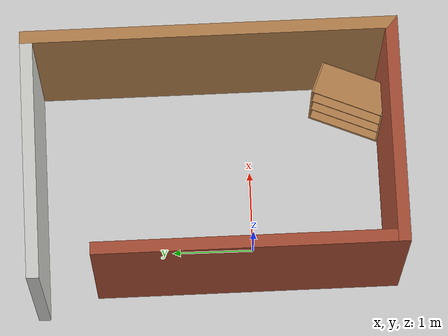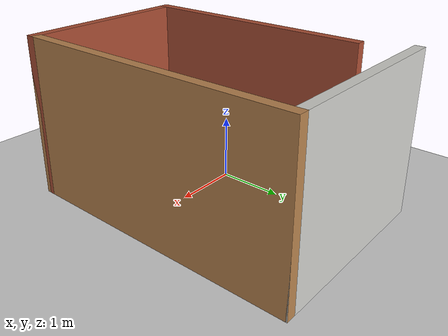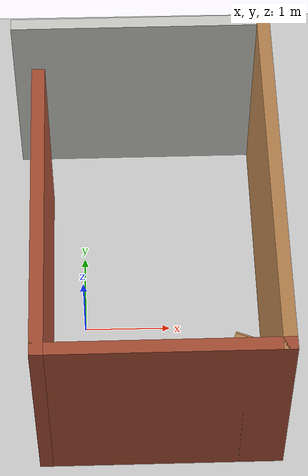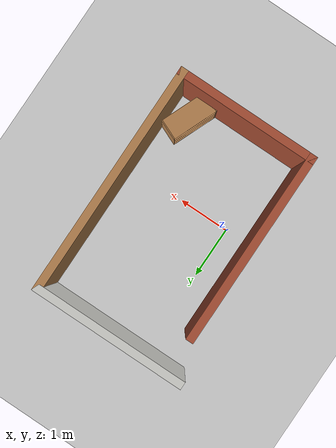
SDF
<sdf version="1.6">
 <world name="default">
  <light name="sun" type="directional">
   <pose>0 0 10 0 -0 0</pose>
   <diffuse>0.8 0.8 0.8 1</diffuse>
   <specular>0.1 0.1 0.1 1</specular>
   <attenuation>
    <range>1000</range>
    <constant>0.9</constant>
    <linear>0.01</linear>
    <quadratic>0.001</quadratic>
   </attenuation>
   <direction>-0.5 0.5 -1</direction>
  </light>
  <model name="ground_plane">
   <static>1</static>
   <link name="link">
    <collision name="collision">
     <geometry><plane><normal>0 0 1</normal><size>100 100</size></plane></geometry>
     <surface><friction><ode><mu>100</mu><mu2>50</mu2></ode></friction></surface>
    </collision>
    <visual name="visual">
     <cast_shadows>0</cast_shadows>
     <geometry><plane><normal>0 0 1</normal><size>100 100</size></plane></geometry>
     <material>
      <script><uri>file://media/materials/scripts/gazebo.material</uri><name>Gazebo/Grey</name></script>
     </material>
    </visual>
   </link>
  </model>
  <gravity>0 0 -9.8</gravity>
  <magnetic_field>6e-06 2.3e-05 -4.2e-05</magnetic_field>
  <atmosphere type="adiabatic"/>
  <physics name="default_physics" default="0" type="ode">
   <max_step_size>0.001</max_step_size>
   <real_time_factor>1</real_time_factor>
   <real_time_update_rate>1000</real_time_update_rate>
  </physics>
  <scene><ambient>0.4 0.4 0.4 1</ambient><background>0.7 0.7 0.7 1</background><shadows>1</shadows></scene>
  <spherical_coordinates>
   <surface_model>EARTH_WGS84</surface_model>
   <latitude_deg>0</latitude_deg>
   <longitude_deg>0</longitude_deg>
   <elevation>0</elevation>
   <heading_deg>0</heading_deg>
  </spherical_coordinates>
  <model name="livingroom_0">
   <link name="Wall_0">
    <pose>0 1.425 0 0 -0 0</pose>
    <visual name="Wall_0_Visual">
     <pose>0 0 1.25 0 -0 0</pose>
     <geometry><box><size>4.5 0.15 2.5</size></box></geometry>
     <material>
      <script><uri>file://media/materials/scripts/gazebo.material</uri><name>Gazebo/Wood</name></script>
      <ambient>1 1 1 1</ambient>
      <diffuse>1 1 1 1</diffuse>
      <specular>0.2 0.2 0.2 1</specular>
      <emissive>0 0 0 1</emissive>
     </material>
    </visual>
    <collision name="Wall_0_Collision">
     <pose>0 0 1.25 0 -0 0</pose>
     <geometry><box><size>4.5 0.15 2.5</size></box></geometry>
     <surface>
      <friction>
       <ode><mu>1</mu><mu2>1</mu2><fdir1>0 0 0</fdir1><slip1>0</slip1><slip2>0</slip2></ode>
       <torsional>
        <coefficient>1</coefficient>
        <patch_radius>0</patch_radius>
        <surface_radius>0</surface_radius>
        <use_patch_radius>1</use_patch_radius>
        <ode><slip>0</slip></ode>
       </torsional>
      </friction>
      <bounce><restitution_coefficient>0</restitution_coefficient><threshold>1e+06</threshold></bounce>
      <contact>
       <collide_without_contact>0</collide_without_contact>
       <collide_without_contact_bitmask>1</collide_without_contact_bitmask>
       <collide_bitmask>1</collide_bitmask>
       <ode>
        <soft_cfm>0</soft_cfm>
        <soft_erp>0.2</soft_erp>
        <kp>1e+13</kp>
        <kd>1</kd>
        <max_vel>0.01</max_vel>
        <min_depth>0</min_depth>
       </ode>
       <bullet>
        <split_impulse>1</split_impulse>
        <split_impulse_penetration_threshold>-0.01</split_impulse_penetration_threshold>
        <soft_cfm>0</soft_cfm>
        <soft_erp>0.2</soft_erp>
        <kp>1e+13</kp>
        <kd>1</kd>
       </bullet>
      </contact>
     </surface>
    </collision>
   </link>
   <link name="Wall_1">
    <pose>2.175 0.125 0 0 0 -1.5708</pose>
    <visual name="Wall_1_Visual">
     <pose>0 0 1.25 0 -0 0</pose>
     <geometry><box><size>2.75 0.15 2.5</size></box></geometry>
     <material>
      <script><uri>file://media/materials/scripts/gazebo.material</uri><name>Gazebo/Bricks</name></script>
      <ambient>1 1 1 1</ambient>
      <diffuse>1 1 1 1</diffuse>
      <specular>0.2 0.2 0.2 1</specular>
      <emissive>0 0 0 1</emissive>
     </material>
    </visual>
    <collision name="Wall_1_Collision">
     <pose>0 0 1.25 0 -0 0</pose>
     <geometry><box><size>2.75 0.15 2.5</size></box></geometry>
     <surface>
      <friction>
       <ode><mu>1</mu><mu2>1</mu2><fdir1>0 0 0</fdir1><slip1>0</slip1><slip2>0</slip2></ode>
       <torsional>
        <coefficient>1</coefficient>
        <patch_radius>0</patch_radius>
        <surface_radius>0</surface_radius>
        <use_patch_radius>1</use_patch_radius>
        <ode><slip>0</slip></ode>
       </torsional>
      </friction>
      <bounce><restitution_coefficient>0</restitution_coefficient><threshold>1e+06</threshold></bounce>
      <contact>
       <collide_without_contact>0</collide_without_contact>
       <collide_without_contact_bitmask>1</collide_without_contact_bitmask>
       <collide_bitmask>1</collide_bitmask>
       <ode>
        <soft_cfm>0</soft_cfm>
        <soft_erp>0.2</soft_erp>
        <kp>1e+13</kp>
        <kd>1</kd>
        <max_vel>0.01</max_vel>
        <min_depth>0</min_depth>
       </ode>
       <bullet>
        <split_impulse>1</split_impulse>
        <split_impulse_penetration_threshold>-0.01</split_impulse_penetration_threshold>
        <soft_cfm>0</soft_cfm>
        <soft_erp>0.2</soft_erp>
        <kp>1e+13</kp>
        <kd>1</kd>
       </bullet>
      </contact>
     </surface>
    </collision>
   </link>
   <link name="Wall_2">
    <pose>0.375 -1.175 0 0 -0 3.14159</pose>
    <visual name="Wall_2_Visual">
     <pose>0 0 1.25 0 -0 0</pose>
     <geometry><box><size>3.75 0.15 2.5</size></box></geometry>
     <material>
      <script><uri>file://media/materials/scripts/gazebo.material</uri><name>Gazebo/Bricks</name></script>
      <ambient>1 1 1 1</ambient>
      <diffuse>1 1 1 1</diffuse>
      <specular>0.2 0.2 0.2 1</specular>
      <emissive>0 0 0 1</emissive>
     </material>
    </visual>
    <collision name="Wall_2_Collision">
     <pose>0 0 1.25 0 -0 0</pose>
     <geometry><box><size>3.75 0.15 2.5</size></box></geometry>
     <surface>
      <friction>
       <ode><mu>1</mu><mu2>1</mu2><fdir1>0 0 0</fdir1><slip1>0</slip1><slip2>0</slip2></ode>
       <torsional>
        <coefficient>1</coefficient>
        <patch_radius>0</patch_radius>
        <surface_radius>0</surface_radius>
        <use_patch_radius>1</use_patch_radius>
        <ode><slip>0</slip></ode>
       </torsional>
      </friction>
      <bounce><restitution_coefficient>0</restitution_coefficient><threshold>1e+06</threshold></bounce>
      <contact>
       <collide_without_contact>0</collide_without_contact>
       <collide_without_contact_bitmask>1</collide_without_contact_bitmask>
       <collide_bitmask>1</collide_bitmask>
       <ode>
        <soft_cfm>0</soft_cfm>
        <soft_erp>0.2</soft_erp>
        <kp>1e+13</kp>
        <kd>1</kd>
        <max_vel>0.01</max_vel>
        <min_depth>0</min_depth>
       </ode>
       <bullet>
        <split_impulse>1</split_impulse>
        <split_impulse_penetration_threshold>-0.01</split_impulse_penetration_threshold>
        <soft_cfm>0</soft_cfm>
        <soft_erp>0.2</soft_erp>
        <kp>1e+13</kp>
        <kd>1</kd>
       </bullet>
      </contact>
     </surface>
    </collision>
   </link>
   <link name="Wall_6">
    <pose>-2.175 0 0 0 0 -1.5708</pose>
    <visual name="Wall_6_Visual">
     <pose>0 0 1.25 0 -0 0</pose>
     <geometry><box><size>3 0.15 2.5</size></box></geometry>
     <material>
      <script><uri>file://media/materials/scripts/gazebo.material</uri><name>Gazebo/CeilingTiled</name></script>
      <ambient>1 1 1 1</ambient>
      <diffuse>1 1 1 1</diffuse>
      <specular>0 0 0 1</specular>
      <emissive>0 0 0 1</emissive>
     </material>
    </visual>
    <collision name="Wall_6_Collision">
     <pose>0 0 1.25 0 -0 0</pose>
     <geometry><box><size>3 0.15 2.5</size></box></geometry>
     <surface>
      <friction>
       <ode><mu>1</mu><mu2>1</mu2><fdir1>0 0 0</fdir1><slip1>0</slip1><slip2>0</slip2></ode>
       <torsional>
        <coefficient>1</coefficient>
        <patch_radius>0</patch_radius>
        <surface_radius>0</surface_radius>
        <use_patch_radius>1</use_patch_radius>
        <ode><slip>0</slip></ode>
       </torsional>
      </friction>
      <bounce><restitution_coefficient>0</restitution_coefficient><threshold>1e+06</threshold></bounce>
      <contact>
       <collide_without_contact>0</collide_without_contact>
       <collide_without_contact_bitmask>1</collide_without_contact_bitmask>
       <collide_bitmask>1</collide_bitmask>
       <ode>
        <soft_cfm>0</soft_cfm>
        <soft_erp>0.2</soft_erp>
        <kp>1e+13</kp>
        <kd>1</kd>
        <max_vel>0.01</max_vel>
        <min_depth>0</min_depth>
       </ode>
       <bullet>
        <split_impulse>1</split_impulse>
        <split_impulse_penetration_threshold>-0.01</split_impulse_penetration_threshold>
        <soft_cfm>0</soft_cfm>
        <soft_erp>0.2</soft_erp>
        <kp>1e+13</kp>
        <kd>1</kd>
       </bullet>
      </contact>
     </surface>
    </collision>
   </link>
   <model name="bookshelf">
    <static>1</static>
    <link name="link">
     <inertial><mass>1</mass></inertial>
     <collision name="back">
      <pose>0 0.005 0.6 0 -0 0</pose>
      <geometry><box><size>0.9 0.01 1.2</size></box></geometry>
     </collision>
     <visual name="visual1">
      <pose>0 0.005 0.6 0 -0 0</pose>
      <geometry><box><size>0.9 0.01 1.2</size></box></geometry>
      <material>
       <script><uri>file://media/materials/scripts/gazebo.material</uri><name>Gazebo/Wood</name></script>
      </material>
     </visual>
     <collision name="left_side">
      <pose>0.45 -0.195 0.6 0 -0 0</pose>
      <geometry><box><size>0.02 0.4 1.2</size></box></geometry>
     </collision>
     <visual name="visual2">
      <pose>0.45 -0.195 0.6 0 -0 0</pose>
      <geometry><box><size>0.02 0.4 1.2</size></box></geometry>
      <material>
       <script><uri>file://media/materials/scripts/gazebo.material</uri><name>Gazebo/Wood</name></script>
      </material>
     </visual>
     <collision name="right_side">
      <pose>-0.45 -0.195 0.6 0 -0 0</pose>
      <geometry><box><size>0.02 0.4 1.2</size></box></geometry>
     </collision>
     <visual name="visual3">
      <pose>-0.45 -0.195 0.6 0 -0 0</pose>
      <geometry><box><size>0.02 0.4 1.2</size></box></geometry>
      <material>
       <script><uri>file://media/materials/scripts/gazebo.material</uri><name>Gazebo/Wood</name></script>
      </material>
     </visual>
     <collision name="bottom">
      <pose>0 -0.195 0.03 0 -0 0</pose>
      <geometry><box><size>0.88 0.4 0.06</size></box></geometry>
     </collision>
     <visual name="visual4">
      <pose>0 -0.195 0.03 0 -0 0</pose>
      <geometry><box><size>0.88 0.4 0.06</size></box></geometry>
      <material>
       <script><uri>file://media/materials/scripts/gazebo.material</uri><name>Gazebo/Wood</name></script>
      </material>
     </visual>
     <collision name="top">
      <pose>0 -0.195 1.19 0 -0 0</pose>
      <geometry><box><size>0.88 0.4 0.02</size></box></geometry>
     </collision>
     <visual name="visual5">
      <pose>0 -0.195 1.19 0 -0 0</pose>
      <geometry><box><size>0.88 0.4 0.02</size></box></geometry>
      <material>
       <script><uri>file://media/materials/scripts/gazebo.material</uri><name>Gazebo/Wood</name></script>
      </material>
     </visual>
     <collision name="low_shelf">
      <pose>0 -0.195 0.43 0 -0 0</pose>
      <geometry><box><size>0.88 0.4 0.02</size></box></geometry>
     </collision>
     <visual name="visual6">
      <pose>0 -0.195 0.43 0 -0 0</pose>
      <geometry><box><size>0.88 0.4 0.02</size></box></geometry>
      <material>
       <script><uri>file://media/materials/scripts/gazebo.material</uri><name>Gazebo/Wood</name></script>
      </material>
     </visual>
     <collision name="high_shelf">
      <pose>0 -0.195 0.8 0 -0 0</pose>
      <geometry><box><size>0.88 0.4 0.02</size></box></geometry>
     </collision>
     <visual name="visual7">
      <pose>0 -0.195 0.8 0 -0 0</pose>
      <geometry><box><size>0.88 0.4 0.02</size></box></geometry>
      <material>
       <script><uri>file://media/materials/scripts/gazebo.material</uri><name>Gazebo/Wood</name></script>
      </material>
     </visual>
    </link>
    <pose>1.82426 1.16615 0 0 0 -0.39488</pose>
   </model>
   <static>1</static>
   <pose>0.720083 0.461829 0 0 0 -1.56632</pose>
  </model>
 </world>
</sdf>
